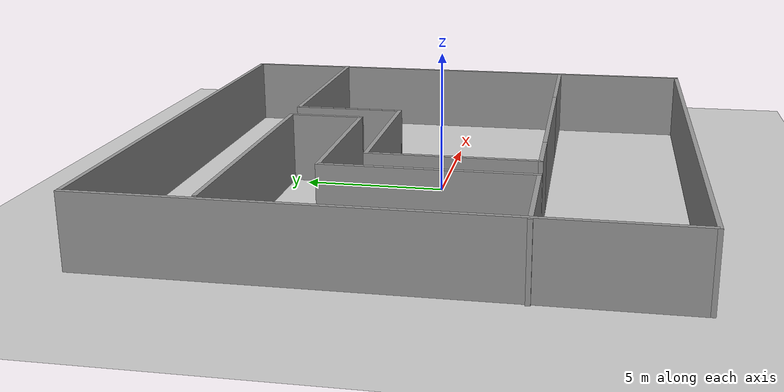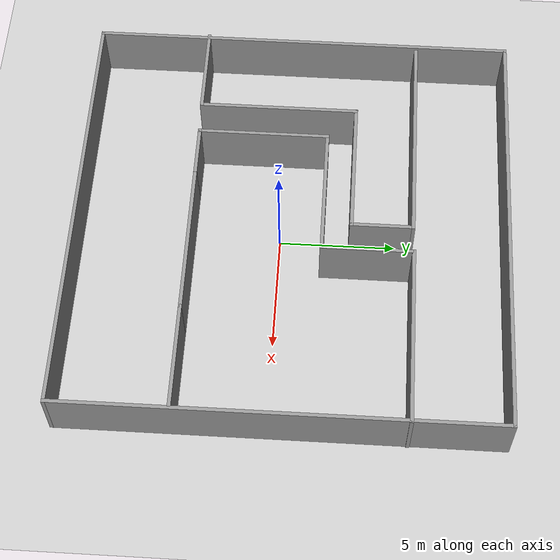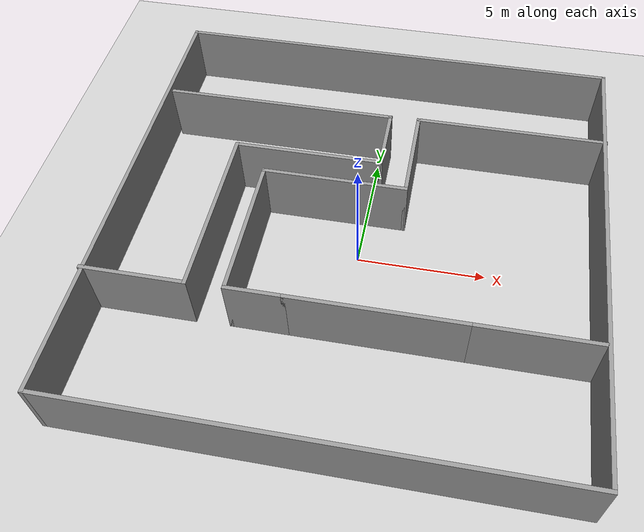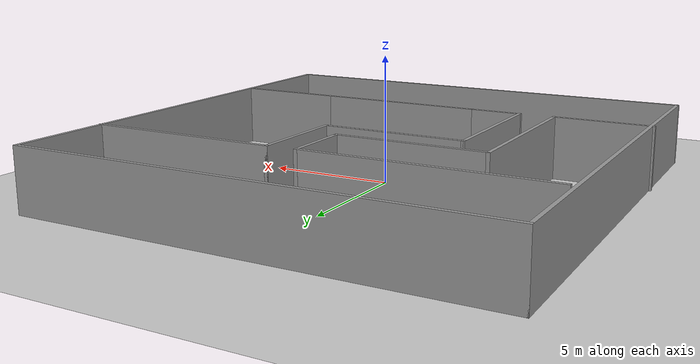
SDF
<sdf version="1.7">
 <world name="default">
  <light name="sun" type="directional">
   <pose>0 0 10 0 -0 0</pose>
   <diffuse>0.8 0.8 0.8 1</diffuse>
   <specular>0.2 0.2 0.2 1</specular>
   <attenuation>
    <range>1000</range>
    <constant>0.9</constant>
    <linear>0.01</linear>
    <quadratic>0.001</quadratic>
   </attenuation>
   <direction>-0.5 0.1 -0.9</direction>
   <spot><inner_angle>0</inner_angle><outer_angle>0</outer_angle><falloff>0</falloff></spot>
  </light>
  <model name="ground_plane">
   <static>1</static>
   <link name="link">
    <collision name="collision">
     <geometry><plane><normal>0 0 1</normal><size>100 100</size></plane></geometry>
     <surface>
      <contact><collide_bitmask>65535</collide_bitmask></contact>
      <friction><ode><mu>100</mu><mu2>50</mu2></ode></friction>
     </surface>
    </collision>
    <visual name="visual">
     <cast_shadows>0</cast_shadows>
     <geometry><plane><normal>0 0 1</normal><size>100 100</size></plane></geometry>
     <material>
      <script><uri>file://media/materials/scripts/gazebo.material</uri><name>Gazebo/Grey</name></script>
     </material>
    </visual>
   </link>
  </model>
  <gravity>0 0 -9.8</gravity>
  <magnetic_field>6e-06 2.3e-05 -4.2e-05</magnetic_field>
  <atmosphere type="adiabatic"/>
  <physics type="ode">
   <max_step_size>0.001</max_step_size>
   <real_time_factor>1</real_time_factor>
   <real_time_update_rate>1000</real_time_update_rate>
  </physics>
  <scene><ambient>0.4 0.4 0.4 1</ambient><background>0.7 0.7 0.7 1</background><shadows>1</shadows></scene>
  <spherical_coordinates>
   <surface_model>EARTH_WGS84</surface_model>
   <latitude_deg>0</latitude_deg>
   <longitude_deg>0</longitude_deg>
   <elevation>0</elevation>
   <heading_deg>0</heading_deg>
  </spherical_coordinates>
  <model name="paper1">
   <pose>-0.103264 0.509635 0 0 -0 0</pose>
   <link name="Wall_10">
    <collision name="Wall_10_Collision">
     <geometry><box><size>18.5 0.15 2.5</size></box></geometry>
     <pose>0 0 1.25 0 -0 0</pose>
    </collision>
    <visual name="Wall_10_Visual">
     <pose>0 0 1.25 0 -0 0</pose>
     <geometry><box><size>18.5 0.15 2.5</size></box></geometry>
     <material>
      <script><uri>file://media/materials/scripts/gazebo.material</uri><name>Gazebo/Grey</name></script>
      <ambient>1 1 1 1</ambient>
     </material>
     <meta><layer>0</layer></meta>
    </visual>
    <pose>0.025058 9.175 0 0 -0 0</pose>
   </link>
   <link name="Wall_11">
    <collision name="Wall_11_Collision">
     <geometry><box><size>18.5 0.15 2.5</size></box></geometry>
     <pose>0 0 1.25 0 -0 0</pose>
    </collision>
    <visual name="Wall_11_Visual">
     <pose>0 0 1.25 0 -0 0</pose>
     <geometry><box><size>18.5 0.15 2.5</size></box></geometry>
     <material>
      <script><uri>file://media/materials/scripts/gazebo.material</uri><name>Gazebo/Grey</name></script>
      <ambient>1 1 1 1</ambient>
     </material>
     <meta><layer>0</layer></meta>
    </visual>
    <pose>9.20006 0 0 0 -0 -1.5708</pose>
   </link>
   <link name="Wall_12">
    <collision name="Wall_12_Collision">
     <geometry><box><size>18.5 0.15 2.5</size></box></geometry>
     <pose>0 0 1.25 0 -0 0</pose>
    </collision>
    <visual name="Wall_12_Visual">
     <pose>0 0 1.25 0 -0 0</pose>
     <geometry><box><size>18.5 0.15 2.5</size></box></geometry>
     <material>
      <script><uri>file://media/materials/scripts/gazebo.material</uri><name>Gazebo/Grey</name></script>
      <ambient>1 1 1 1</ambient>
     </material>
     <meta><layer>0</layer></meta>
    </visual>
    <pose>0.025058 -9.175 0 0 -0 3.14159</pose>
   </link>
   <link name="Wall_14">
    <collision name="Wall_14_Collision">
     <geometry><box><size>4 0.15 2.5</size></box></geometry>
     <pose>0 0 1.25 0 -0 0</pose>
    </collision>
    <visual name="Wall_14_Visual">
     <pose>0 0 1.25 0 -0 0</pose>
     <geometry><box><size>4 0.15 2.5</size></box></geometry>
     <material>
      <script><uri>file://media/materials/scripts/gazebo.material</uri><name>Gazebo/Grey</name></script>
      <ambient>1 1 1 1</ambient>
     </material>
     <meta><layer>0</layer></meta>
    </visual>
    <pose>-7.31053 -4.30069 0 0 -0 0</pose>
   </link>
   <link name="Wall_15">
    <collision name="Wall_15_Collision">
     <geometry><box><size>7 0.15 2.5</size></box></geometry>
     <pose>0 0 1.25 0 -0 0</pose>
    </collision>
    <visual name="Wall_15_Visual">
     <pose>0 0 1.25 0 -0 0</pose>
     <geometry><box><size>7 0.15 2.5</size></box></geometry>
     <material>
      <script><uri>file://media/materials/scripts/gazebo.material</uri><name>Gazebo/Grey</name></script>
      <ambient>1 1 1 1</ambient>
     </material>
     <meta><layer>0</layer></meta>
    </visual>
    <pose>-5.38553 -0.875686 0 0 -0 1.5708</pose>
   </link>
   <link name="Wall_16">
    <collision name="Wall_16_Collision">
     <geometry><box><size>6 0.15 2.5</size></box></geometry>
     <pose>0 0 1.25 0 -0 0</pose>
    </collision>
    <visual name="Wall_16_Visual">
     <pose>0 0 1.25 0 -0 0</pose>
     <geometry><box><size>6 0.15 2.5</size></box></geometry>
     <material>
      <script><uri>file://media/materials/scripts/gazebo.material</uri><name>Gazebo/Grey</name></script>
      <ambient>1 1 1 1</ambient>
     </material>
     <meta><layer>0</layer></meta>
    </visual>
    <pose>-2.46053 2.54931 0 0 -0 0</pose>
   </link>
   <link name="Wall_17">
    <collision name="Wall_17_Collision">
     <geometry><box><size>2.75 0.15 2.5</size></box></geometry>
     <pose>0 0 1.25 0 -0 0</pose>
    </collision>
    <visual name="Wall_17_Visual">
     <pose>0 0 1.25 0 -0 0</pose>
     <geometry><box><size>2.75 0.15 2.5</size></box></geometry>
     <material>
      <script><uri>file://media/materials/scripts/gazebo.material</uri><name>Gazebo/Grey</name></script>
      <ambient>1 1 1 1</ambient>
     </material>
     <meta><layer>0</layer></meta>
    </visual>
    <pose>0.464469 3.84931 0 0 -0 1.5708</pose>
   </link>
   <link name="Wall_18">
    <collision name="Wall_18_Collision">
     <geometry><box><size>9.5 0.15 2.5</size></box></geometry>
     <pose>0 0 1.25 0 -0 0</pose>
    </collision>
    <visual name="Wall_18_Visual">
     <pose>0 0 1.25 0 -0 0</pose>
     <geometry><box><size>9.5 0.15 2.5</size></box></geometry>
     <material>
      <script><uri>file://media/materials/scripts/gazebo.material</uri><name>Gazebo/Grey</name></script>
      <ambient>1 1 1 1</ambient>
     </material>
     <meta><layer>0</layer></meta>
    </visual>
    <pose>-4.21053 5.14931 0 0 -0 3.14159</pose>
   </link>
   <link name="Wall_21">
    <collision name="Wall_21_Collision">
     <geometry><box><size>2.25 0.15 2.5</size></box></geometry>
     <pose>0 0 1.25 0 -0 0</pose>
    </collision>
    <visual name="Wall_21_Visual">
     <pose>0 0 1.25 0 -0 0</pose>
     <geometry><box><size>2.25 0.15 2.5</size></box></geometry>
     <material>
      <script><uri>file://media/materials/scripts/gazebo.material</uri><name>Gazebo/Grey</name></script>
      <ambient>1 1 1 1</ambient>
     </material>
     <meta><layer>0</layer></meta>
    </visual>
    <pose>-2.91447 -4.25659 0 0 -0 0</pose>
   </link>
   <link name="Wall_23">
    <collision name="Wall_23_Collision">
     <geometry><box><size>6.75 0.15 2.5</size></box></geometry>
     <pose>0 0 1.25 0 -0 0</pose>
    </collision>
    <visual name="Wall_23_Visual">
     <pose>0 0 1.25 0 -0 0</pose>
     <geometry><box><size>6.75 0.15 2.5</size></box></geometry>
     <material>
      <script><uri>file://media/materials/scripts/gazebo.material</uri><name>Gazebo/Grey</name></script>
      <ambient>1 1 1 1</ambient>
     </material>
     <meta><layer>0</layer></meta>
    </visual>
    <pose>1.43553 -4.25659 0 0 -0 0</pose>
   </link>
   <link name="Wall_25">
    <collision name="Wall_25_Collision">
     <geometry><box><size>5.75 0.15 2.5</size></box></geometry>
     <pose>0 0 1.25 0 -0 0</pose>
    </collision>
    <visual name="Wall_25_Visual">
     <pose>0 0 1.25 0 -0 0</pose>
     <geometry><box><size>5.75 0.15 2.5</size></box></geometry>
     <material>
      <script><uri>file://media/materials/scripts/gazebo.material</uri><name>Gazebo/Grey</name></script>
      <ambient>1 1 1 1</ambient>
     </material>
     <meta><layer>0</layer></meta>
    </visual>
    <pose>-3.96447 -1.45659 0 0 -0 1.5708</pose>
   </link>
   <link name="Wall_26">
    <collision name="Wall_26_Collision">
     <geometry><box><size>5.75 0.15 2.5</size></box></geometry>
     <pose>0 0 1.25 0 -0 0</pose>
    </collision>
    <visual name="Wall_26_Visual">
     <pose>0 0 1.25 0 -0 0</pose>
     <geometry><box><size>5.75 0.15 2.5</size></box></geometry>
     <material>
      <script><uri>file://media/materials/scripts/gazebo.material</uri><name>Gazebo/Grey</name></script>
      <ambient>1 1 1 1</ambient>
     </material>
     <meta><layer>0</layer></meta>
    </visual>
    <pose>-1.16447 1.34341 0 0 -0 0</pose>
   </link>
   <link name="Wall_29">
    <collision name="Wall_29_Collision">
     <geometry><box><size>4 0.15 2.5</size></box></geometry>
     <pose>0 0 1.25 0 -0 0</pose>
    </collision>
    <visual name="Wall_29_Visual">
     <pose>0 0 1.25 0 -0 0</pose>
     <geometry><box><size>4 0.15 2.5</size></box></geometry>
     <material>
      <script><uri>file://media/materials/scripts/gazebo.material</uri><name>Gazebo/Grey</name></script>
      <ambient>1 1 1 1</ambient>
     </material>
     <meta><layer>0</layer></meta>
    </visual>
    <pose>1.63553 3.26841 0 0 -0 1.5708</pose>
   </link>
   <link name="Wall_30">
    <collision name="Wall_30_Collision">
     <geometry><box><size>7.75 0.15 2.5</size></box></geometry>
     <pose>0 0 1.25 0 -0 0</pose>
    </collision>
    <visual name="Wall_30_Visual">
     <pose>0 0 1.25 0 -0 0</pose>
     <geometry><box><size>7.75 0.15 2.5</size></box></geometry>
     <material>
      <script><uri>file://media/materials/scripts/gazebo.material</uri><name>Gazebo/Grey</name></script>
      <ambient>1 1 1 1</ambient>
     </material>
     <meta><layer>0</layer></meta>
    </visual>
    <pose>5.43553 5.19341 0 0 -0 0</pose>
   </link>
   <link name="Wall_32">
    <collision name="Wall_32_Collision">
     <geometry><box><size>4.5 0.15 2.5</size></box></geometry>
     <pose>0 0 1.25 0 -0 0</pose>
    </collision>
    <visual name="Wall_32_Visual">
     <pose>0 0 1.25 0 -0 0</pose>
     <geometry><box><size>4.5 0.15 2.5</size></box></geometry>
     <material>
      <script><uri>file://media/materials/scripts/gazebo.material</uri><name>Gazebo/Grey</name></script>
      <ambient>1 1 1 1</ambient>
     </material>
     <meta><layer>0</layer></meta>
    </visual>
    <pose>6.91053 -4.25659 0 0 -0 0</pose>
   </link>
   <link name="Wall_9">
    <collision name="Wall_9_Collision">
     <geometry><box><size>18.5 0.15 2.5</size></box></geometry>
     <pose>0 0 1.25 0 -0 0</pose>
    </collision>
    <visual name="Wall_9_Visual">
     <pose>0 0 1.25 0 -0 0</pose>
     <geometry><box><size>18.5 0.15 2.5</size></box></geometry>
     <material>
      <script><uri>file://media/materials/scripts/gazebo.material</uri><name>Gazebo/Grey</name></script>
      <ambient>1 1 1 1</ambient>
     </material>
     <meta><layer>0</layer></meta>
    </visual>
    <pose>-9.14994 0 0 0 -0 1.5708</pose>
   </link>
   <static>1</static>
  </model>
 </world>
</sdf>
